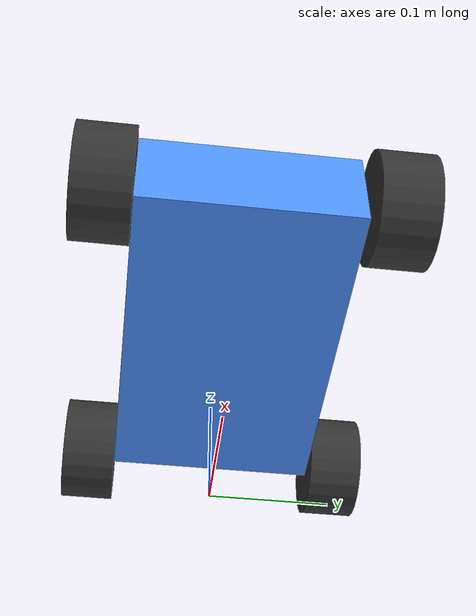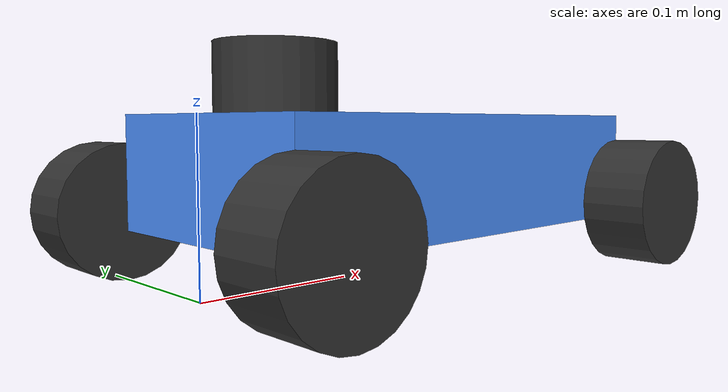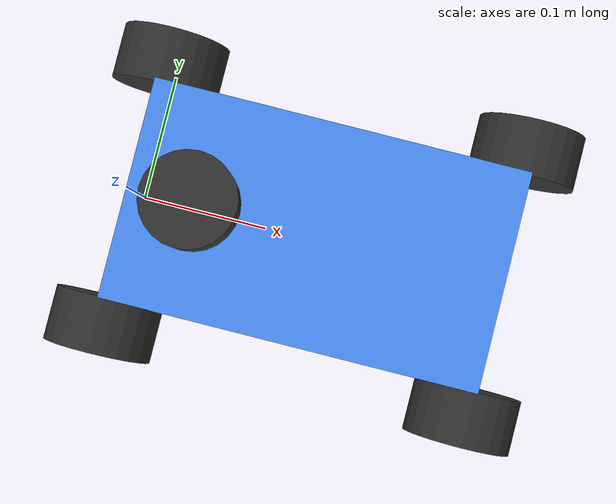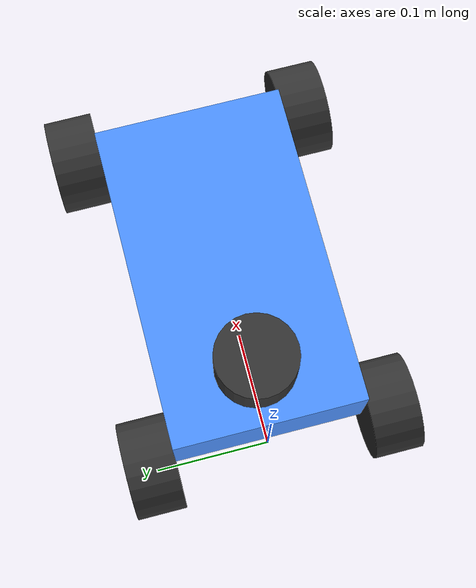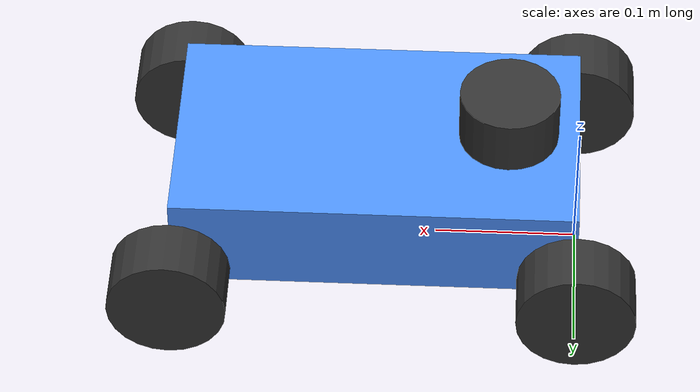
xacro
<?xml version="1.0"?>
<!-- Originally from https://github.com/mit-racecar/racecar_simulator/blob/master/racecar.xacro -->
<!-- A simple model of the racecar for rviz -->

<robot xmlns:xacro="http://www.ros.org/wiki/xacro" name="racecar">

  <xacro:property name="wheelbase" value="0.283" />
  <xacro:property name="width" value="0.165" />
  <xacro:property name="height" value="0.07" />
  <xacro:property name="ground_offset" value="0.03" />
  <xacro:property name="wheel_radius" value="0.0415" />
  <!-- xacro:property name="wheel_length" value="0.045" / -->
  <xacro:property name="wheel_length" value="0.042" />
  <xacro:property name="laser_distance_from_base_link" value="0.05" />
  <xacro:property name="laser_height" value="0.04" />
  <xacro:property name="laser_radius" value="0.035" />

  <material name="black">
    <color rgba="0.2 0.2 0.2 1."/>
  </material>

  <material name="blue">
    <color rgba="0.3 0.57 1. 1."/>
  </material>

	<link name="base_footprint">
		<inertial>
			<origin
				xyz="0 0 0"
				rpy="0 0 0" />
			<mass
				value="0.1" />
			<inertia
				ixx="1"
				ixy="0"
				ixz="0"
				iyy="1"
				iyz="0"
				izz="1" />
		</inertial>
	</link>

  <link name="base_link">
    <visual>
      <origin xyz="${wheelbase/2} 0 ${ground_offset+height/2}"/>
      <geometry>
        <box size="${wheelbase} ${width} ${height}"/>
      </geometry>
      <material name="blue"/>
    </visual>
  </link>

	<joint
		name="base_footprint_to_base_link"
		type="fixed">
		<origin
			xyz="0 0 0"
			rpy="0 0 0" />
		<parent
			link="base_footprint" />
		<child
			link="base_link" />
	</joint>

  <joint name="base_to_laser_model" type="fixed">
    <parent link="base_link"/>
    <child link="laser"/>
    <origin xyz="${laser_distance_from_base_link} 0 ${ground_offset+height+(laser_height/2)}"/>
  </joint>

  <link name="laser">
    <visual>
      <geometry>
        <cylinder radius="${laser_radius}" length="${laser_height}"/>
      </geometry>
      <material name="black"/>
    </visual>
  </link>

  <joint name="base_to_back_left_wheel" type="fixed">
    <parent link="base_link"/>
    <child link="back_left_wheel"/>
    <origin xyz="0 ${(wheel_length+width)/2} ${wheel_radius}"/>
  </joint>

  <link name="back_left_wheel">
    <visual>
      <geometry>
        <cylinder radius="${wheel_radius}" length="${wheel_length}"/>
      </geometry>
      <material name="black"/>
      <origin rpy="${pi/2} 0 0"/>
    </visual>
  </link>

  <joint name="base_to_back_right_wheel" type="fixed">
    <parent link="base_link"/>
    <child link="back_right_wheel"/>
    <origin xyz="0 ${-(wheel_length+width)/2} ${wheel_radius}"/>
  </joint>

  <link name="back_right_wheel">
    <visual>
      <geometry>
        <cylinder radius="${wheel_radius}" length="${wheel_length}"/>
      </geometry>
      <material name="black"/>
      <origin rpy="${pi/2} 0 0"/>
    </visual>
  </link>

  <joint name="base_to_front_left_hinge" type="fixed">
    <parent link="base_link"/>
    <child link="front_left_hinge"/>
    <origin xyz="${wheelbase} ${(wheel_length+width)/2} ${wheel_radius}"/>
  </joint>

  <link name="front_left_hinge"/>

  <joint name="front_left_hinge_to_wheel" type="fixed">
    <parent link="front_left_hinge"/>
    <child link="front_left_wheel"/>
  </joint>

  <link name="front_left_wheel">
    <visual>
      <geometry>
        <cylinder radius="${wheel_radius}" length="${wheel_length}"/>
      </geometry>
      <material name="black"/>
      <origin rpy="${pi/2} 0 0"/>
    </visual>
  </link>

  <joint name="base_to_front_right_hinge" type="fixed">
    <parent link="base_link"/>
    <child link="front_right_hinge"/>
    <origin xyz="${wheelbase} ${-(wheel_length+width)/2} ${wheel_radius}"/>
  </joint>

  <link name="front_right_hinge"/>

  <joint name="front_right_hinge_to_wheel" type="fixed">
    <parent link="front_right_hinge"/>
    <child link="front_right_wheel"/>
  </joint>

  <link name="front_right_wheel">
    <visual>
      <geometry>
        <cylinder radius="${wheel_radius}" length="${wheel_length}"/>
      </geometry>
      <material name="black"/>
      <origin rpy="${pi/2} 0 0"/>
    </visual>
  </link>

</robot>
